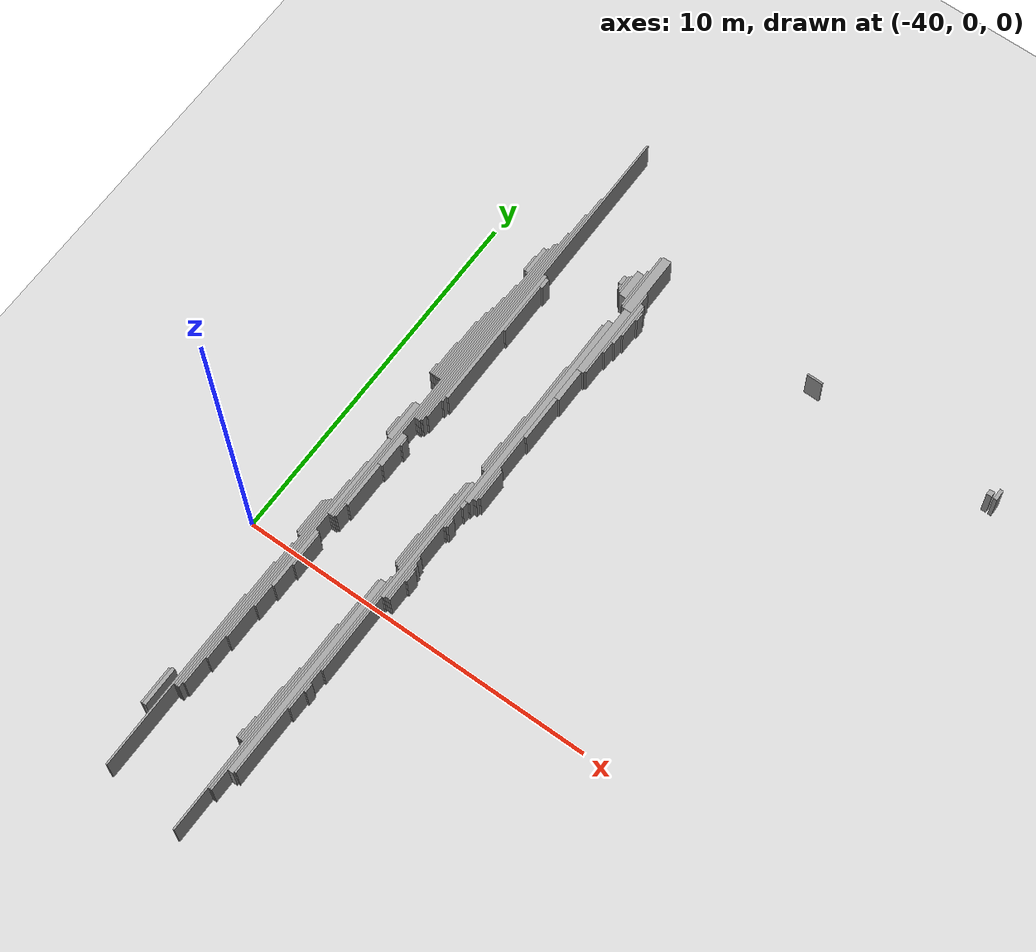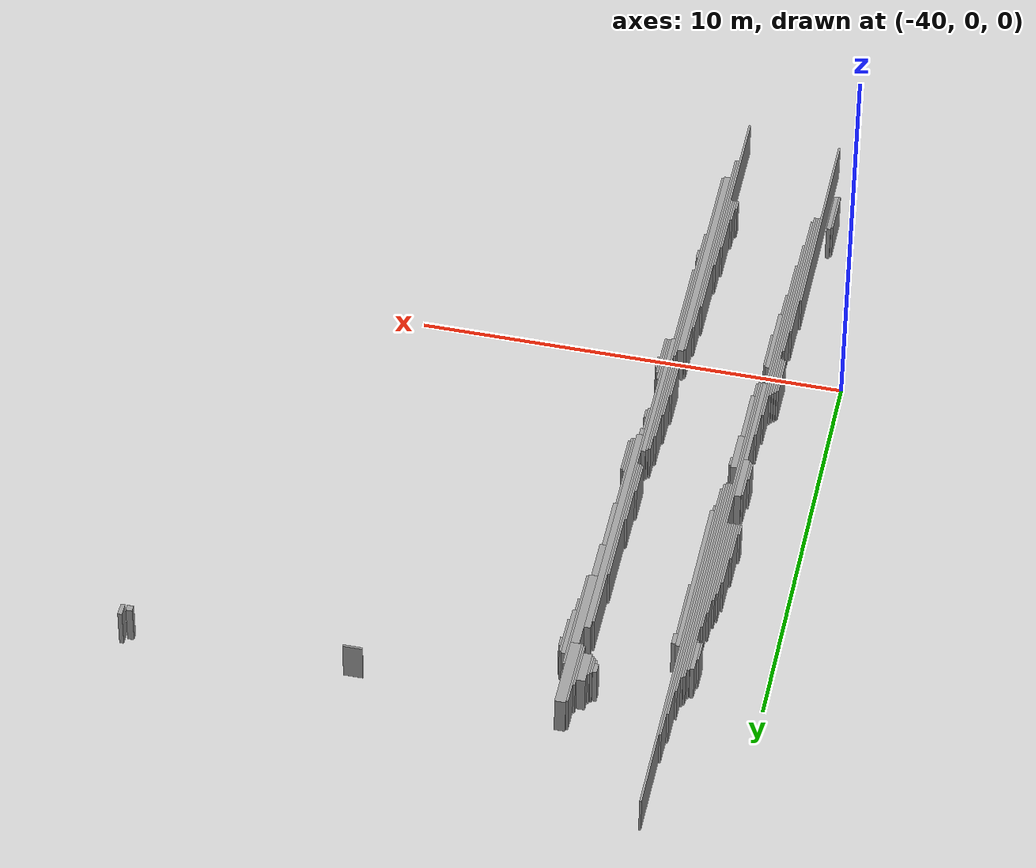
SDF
<sdf version="1.6">
 <world name="default">
  <include><uri>model://ground_plane</uri></include>
  <include><uri>model://sun</uri></include>
  <model name="wall_58">
   <static>1</static>
   <pose>-37.974999999999994 9.2 0.5 0 0 0</pose>
   <link name="link">
    <collision name="collision"><geometry><box><size>0.05 9.4 1.0</size></box></geometry></collision>
    <visual name="visual">
     <geometry><box><size>0.05 9.4 1.0</size></box></geometry>
     <material>
      <script><uri>file://media/materials/scripts/gazebo.material</uri><name>Gazebo/Grey</name></script>
     </material>
    </visual>
   </link>
  </model>
  <model name="wall_149">
   <static>1</static>
   <pose>-38.025 8.150000000000002 0.5 0 0 0</pose>
   <link name="link">
    <collision name="collision">
     <geometry><box><size>0.05 7.6000000000000005 1.0</size></box></geometry>
    </collision>
    <visual name="visual">
     <geometry><box><size>0.05 7.6000000000000005 1.0</size></box></geometry>
     <material>
      <script><uri>file://media/materials/scripts/gazebo.material</uri><name>Gazebo/Grey</name></script>
     </material>
    </visual>
   </link>
  </model>
  <model name="wall_155">
   <static>1</static>
   <pose>-35.675 10.625000000000004 0.5 0 0 0</pose>
   <link name="link">
    <collision name="collision"><geometry><box><size>0.25 1.75 1.0</size></box></geometry></collision>
    <visual name="visual">
     <geometry><box><size>0.25 1.75 1.0</size></box></geometry>
     <material>
      <script><uri>file://media/materials/scripts/gazebo.material</uri><name>Gazebo/Grey</name></script>
     </material>
    </visual>
   </link>
  </model>
  <model name="wall_159">
   <static>1</static>
   <pose>-35.824999999999996 10.600000000000005 0.5 0 0 0</pose>
   <link name="link">
    <collision name="collision">
     <geometry><box><size>0.05 1.7000000000000002 1.0</size></box></geometry>
    </collision>
    <visual name="visual">
     <geometry><box><size>0.05 1.7000000000000002 1.0</size></box></geometry>
     <material>
      <script><uri>file://media/materials/scripts/gazebo.material</uri><name>Gazebo/Grey</name></script>
     </material>
    </visual>
   </link>
  </model>
  <model name="wall_167">
   <static>1</static>
   <pose>-38.074999999999996 7.824999999999999 0.5 0 0 0</pose>
   <link name="link">
    <collision name="collision">
     <geometry><box><size>0.05 7.050000000000001 1.0</size></box></geometry>
    </collision>
    <visual name="visual">
     <geometry><box><size>0.05 7.050000000000001 1.0</size></box></geometry>
     <material>
      <script><uri>file://media/materials/scripts/gazebo.material</uri><name>Gazebo/Grey</name></script>
     </material>
    </visual>
   </link>
  </model>
  <model name="wall_187">
   <static>1</static>
   <pose>-25.499999999999996 10.95 0.5 0 0 0</pose>
   <link name="link">
    <collision name="collision">
     <geometry><box><size>0.1 0.30000000000000004 1.0</size></box></geometry>
    </collision>
    <visual name="visual">
     <geometry><box><size>0.1 0.30000000000000004 1.0</size></box></geometry>
     <material>
      <script><uri>file://media/materials/scripts/gazebo.material</uri><name>Gazebo/Grey</name></script>
     </material>
    </visual>
   </link>
  </model>
  <model name="wall_204">
   <static>1</static>
   <pose>-35.875 10.375000000000004 0.5 0 0 0</pose>
   <link name="link">
    <collision name="collision">
     <geometry><box><size>0.05 1.1500000000000001 1.0</size></box></geometry>
    </collision>
    <visual name="visual">
     <geometry><box><size>0.05 1.1500000000000001 1.0</size></box></geometry>
     <material>
      <script><uri>file://media/materials/scripts/gazebo.material</uri><name>Gazebo/Grey</name></script>
     </material>
    </visual>
   </link>
  </model>
  <model name="wall_205">
   <static>1</static>
   <pose>-30.824999999999996 10.925 0.5 0 0 0</pose>
   <link name="link">
    <collision name="collision"><geometry><box><size>0.45 0.05 1.0</size></box></geometry></collision>
    <visual name="visual">
     <geometry><box><size>0.45 0.05 1.0</size></box></geometry>
     <material>
      <script><uri>file://media/materials/scripts/gazebo.material</uri><name>Gazebo/Grey</name></script>
     </material>
    </visual>
   </link>
  </model>
  <model name="wall_206">
   <static>1</static>
   <pose>-25.674999999999997 10.875000000000004 0.5 0 0 0</pose>
   <link name="link">
    <collision name="collision">
     <geometry><box><size>0.15000000000000002 0.15000000000000002 1.0</size></box></geometry>
    </collision>
    <visual name="visual">
     <geometry><box><size>0.15000000000000002 0.15000000000000002 1.0</size></box></geometry>
     <material>
      <script><uri>file://media/materials/scripts/gazebo.material</uri><name>Gazebo/Grey</name></script>
     </material>
    </visual>
   </link>
  </model>
  <model name="wall_215">
   <static>1</static>
   <pose>-36.0 10.400000000000002 0.5 0 0 0</pose>
   <link name="link">
    <collision name="collision"><geometry><box><size>0.2 0.8 1.0</size></box></geometry></collision>
    <visual name="visual">
     <geometry><box><size>0.2 0.8 1.0</size></box></geometry>
     <material>
      <script><uri>file://media/materials/scripts/gazebo.material</uri><name>Gazebo/Grey</name></script>
     </material>
    </visual>
   </link>
  </model>
  <model name="wall_228">
   <static>1</static>
   <pose>-38.125 7.475000000000005 0.5 0 0 0</pose>
   <link name="link">
    <collision name="collision">
     <geometry><box><size>0.05 6.3500000000000005 1.0</size></box></geometry>
    </collision>
    <visual name="visual">
     <geometry><box><size>0.05 6.3500000000000005 1.0</size></box></geometry>
     <material>
      <script><uri>file://media/materials/scripts/gazebo.material</uri><name>Gazebo/Grey</name></script>
     </material>
    </visual>
   </link>
  </model>
  <model name="wall_229">
   <static>1</static>
   <pose>-36.125 10.325 0.5 0 0 0</pose>
   <link name="link">
    <collision name="collision"><geometry><box><size>0.05 0.55 1.0</size></box></geometry></collision>
    <visual name="visual">
     <geometry><box><size>0.05 0.55 1.0</size></box></geometry>
     <material>
      <script><uri>file://media/materials/scripts/gazebo.material</uri><name>Gazebo/Grey</name></script>
     </material>
    </visual>
   </link>
  </model>
  <model name="wall_230">
   <static>1</static>
   <pose>-36.175 10.325 0.5 0 0 0</pose>
   <link name="link">
    <collision name="collision"><geometry><box><size>0.05 0.45 1.0</size></box></geometry></collision>
    <visual name="visual">
     <geometry><box><size>0.05 0.45 1.0</size></box></geometry>
     <material>
      <script><uri>file://media/materials/scripts/gazebo.material</uri><name>Gazebo/Grey</name></script>
     </material>
    </visual>
   </link>
  </model>
  <model name="wall_232">
   <static>1</static>
   <pose>-36.25 10.375000000000004 0.5 0 0 0</pose>
   <link name="link">
    <collision name="collision"><geometry><box><size>0.1 0.25 1.0</size></box></geometry></collision>
    <visual name="visual">
     <geometry><box><size>0.1 0.25 1.0</size></box></geometry>
     <material>
      <script><uri>file://media/materials/scripts/gazebo.material</uri><name>Gazebo/Grey</name></script>
     </material>
    </visual>
   </link>
  </model>
  <model name="wall_234">
   <static>1</static>
   <pose>-35.525 9.075 0.5 0 0 0</pose>
   <link name="link">
    <collision name="collision">
     <geometry><box><size>0.05 2.6500000000000004 1.0</size></box></geometry>
    </collision>
    <visual name="visual">
     <geometry><box><size>0.05 2.6500000000000004 1.0</size></box></geometry>
     <material>
      <script><uri>file://media/materials/scripts/gazebo.material</uri><name>Gazebo/Grey</name></script>
     </material>
    </visual>
   </link>
  </model>
  <model name="wall_236">
   <static>1</static>
   <pose>-38.175 7.275000000000002 0.5 0 0 0</pose>
   <link name="link">
    <collision name="collision"><geometry><box><size>0.05 5.95 1.0</size></box></geometry></collision>
    <visual name="visual">
     <geometry><box><size>0.05 5.95 1.0</size></box></geometry>
     <material>
      <script><uri>file://media/materials/scripts/gazebo.material</uri><name>Gazebo/Grey</name></script>
     </material>
    </visual>
   </link>
  </model>
  <model name="wall_237">
   <static>1</static>
   <pose>-36.224999999999994 10.2 0.5 0 0 0</pose>
   <link name="link">
    <collision name="collision"><geometry><box><size>0.05 0.1 1.0</size></box></geometry></collision>
    <visual name="visual">
     <geometry><box><size>0.05 0.1 1.0</size></box></geometry>
     <material>
      <script><uri>file://media/materials/scripts/gazebo.material</uri><name>Gazebo/Grey</name></script>
     </material>
    </visual>
   </link>
  </model>
  <model name="wall_238">
   <static>1</static>
   <pose>-38.224999999999994 5.6250000000000036 0.5 0 0 0</pose>
   <link name="link">
    <collision name="collision"><geometry><box><size>0.05 9.15 1.0</size></box></geometry></collision>
    <visual name="visual">
     <geometry><box><size>0.05 9.15 1.0</size></box></geometry>
     <material>
      <script><uri>file://media/materials/scripts/gazebo.material</uri><name>Gazebo/Grey</name></script>
     </material>
    </visual>
   </link>
  </model>
  <model name="wall_239">
   <static>1</static>
   <pose>-35.449999999999996 9.45 0.5 0 0 0</pose>
   <link name="link">
    <collision name="collision"><geometry><box><size>0.1 1.3 1.0</size></box></geometry></collision>
    <visual name="visual">
     <geometry><box><size>0.1 1.3 1.0</size></box></geometry>
     <material>
      <script><uri>file://media/materials/scripts/gazebo.material</uri><name>Gazebo/Grey</name></script>
     </material>
    </visual>
   </link>
  </model>
  <model name="wall_240">
   <static>1</static>
   <pose>-35.375 9.575 0.5 0 0 0</pose>
   <link name="link">
    <collision name="collision">
     <geometry><box><size>0.05 0.9500000000000001 1.0</size></box></geometry>
    </collision>
    <visual name="visual">
     <geometry><box><size>0.05 0.9500000000000001 1.0</size></box></geometry>
     <material>
      <script><uri>file://media/materials/scripts/gazebo.material</uri><name>Gazebo/Grey</name></script>
     </material>
    </visual>
   </link>
  </model>
  <model name="wall_241">
   <static>1</static>
   <pose>-38.275 5.525000000000002 0.5 0 0 0</pose>
   <link name="link">
    <collision name="collision">
     <geometry><box><size>0.05 8.950000000000001 1.0</size></box></geometry>
    </collision>
    <visual name="visual">
     <geometry><box><size>0.05 8.950000000000001 1.0</size></box></geometry>
     <material>
      <script><uri>file://media/materials/scripts/gazebo.material</uri><name>Gazebo/Grey</name></script>
     </material>
    </visual>
   </link>
  </model>
  <model name="wall_242">
   <static>1</static>
   <pose>-38.349999999999994 9.55 0.5 0 0 0</pose>
   <link name="link">
    <collision name="collision"><geometry><box><size>0.1 0.8 1.0</size></box></geometry></collision>
    <visual name="visual">
     <geometry><box><size>0.1 0.8 1.0</size></box></geometry>
     <material>
      <script><uri>file://media/materials/scripts/gazebo.material</uri><name>Gazebo/Grey</name></script>
     </material>
    </visual>
   </link>
  </model>
  <model name="wall_243">
   <static>1</static>
   <pose>-35.324999999999996 9.775000000000002 0.5 0 0 0</pose>
   <link name="link">
    <collision name="collision"><geometry><box><size>0.05 0.25 1.0</size></box></geometry></collision>
    <visual name="visual">
     <geometry><box><size>0.05 0.25 1.0</size></box></geometry>
     <material>
      <script><uri>file://media/materials/scripts/gazebo.material</uri><name>Gazebo/Grey</name></script>
     </material>
    </visual>
   </link>
  </model>
  <model name="wall_244">
   <static>1</static>
   <pose>-35.65 8.725000000000005 0.5 0 0 0</pose>
   <link name="link">
    <collision name="collision">
     <geometry><box><size>0.2 2.0500000000000003 1.0</size></box></geometry>
    </collision>
    <visual name="visual">
     <geometry><box><size>0.2 2.0500000000000003 1.0</size></box></geometry>
     <material>
      <script><uri>file://media/materials/scripts/gazebo.material</uri><name>Gazebo/Grey</name></script>
     </material>
    </visual>
   </link>
  </model>
  <model name="wall_245">
   <static>1</static>
   <pose>-38.425 9.400000000000002 0.5 0 0 0</pose>
   <link name="link">
    <collision name="collision"><geometry><box><size>0.05 0.5 1.0</size></box></geometry></collision>
    <visual name="visual">
     <geometry><box><size>0.05 0.5 1.0</size></box></geometry>
     <material>
      <script><uri>file://media/materials/scripts/gazebo.material</uri><name>Gazebo/Grey</name></script>
     </material>
    </visual>
   </link>
  </model>
  <model name="wall_247">
   <static>1</static>
   <pose>-37.9 7.275000000000002 0.5 0 0 0</pose>
   <link name="link">
    <collision name="collision"><geometry><box><size>0.1 4.15 1.0</size></box></geometry></collision>
    <visual name="visual">
     <geometry><box><size>0.1 4.15 1.0</size></box></geometry>
     <material>
      <script><uri>file://media/materials/scripts/gazebo.material</uri><name>Gazebo/Grey</name></script>
     </material>
    </visual>
   </link>
  </model>
  <model name="wall_250">
   <static>1</static>
   <pose>-37.8 9.150000000000002 0.5 0 0 0</pose>
   <link name="link">
    <collision name="collision">
     <geometry><box><size>0.1 0.30000000000000004 1.0</size></box></geometry>
    </collision>
    <visual name="visual">
     <geometry><box><size>0.1 0.30000000000000004 1.0</size></box></geometry>
     <material>
      <script><uri>file://media/materials/scripts/gazebo.material</uri><name>Gazebo/Grey</name></script>
     </material>
    </visual>
   </link>
  </model>
  <model name="wall_251">
   <static>1</static>
   <pose>-35.824999999999996 6.2500000000000036 0.5 0 0 0</pose>
   <link name="link">
    <collision name="collision">
     <geometry><box><size>0.15000000000000002 6.0 1.0</size></box></geometry>
    </collision>
    <visual name="visual">
     <geometry><box><size>0.15000000000000002 6.0 1.0</size></box></geometry>
     <material>
      <script><uri>file://media/materials/scripts/gazebo.material</uri><name>Gazebo/Grey</name></script>
     </material>
    </visual>
   </link>
  </model>
  <model name="wall_252">
   <static>1</static>
   <pose>-38.324999999999996 9.125000000000004 0.5 0 0 0</pose>
   <link name="link">
    <collision name="collision"><geometry><box><size>0.05 0.05 1.0</size></box></geometry></collision>
    <visual name="visual">
     <geometry><box><size>0.05 0.05 1.0</size></box></geometry>
     <material>
      <script><uri>file://media/materials/scripts/gazebo.material</uri><name>Gazebo/Grey</name></script>
     </material>
    </visual>
   </link>
  </model>
  <model name="wall_253">
   <static>1</static>
   <pose>-35.925 4.600000000000001 0.5 0 0 0</pose>
   <link name="link">
    <collision name="collision"><geometry><box><size>0.05 8.9 1.0</size></box></geometry></collision>
    <visual name="visual">
     <geometry><box><size>0.05 8.9 1.0</size></box></geometry>
     <material>
      <script><uri>file://media/materials/scripts/gazebo.material</uri><name>Gazebo/Grey</name></script>
     </material>
    </visual>
   </link>
  </model>
  <model name="wall_255">
   <static>1</static>
   <pose>-37.824999999999996 8.250000000000004 0.5 0 0 0</pose>
   <link name="link">
    <collision name="collision"><geometry><box><size>0.05 1.5 1.0</size></box></geometry></collision>
    <visual name="visual">
     <geometry><box><size>0.05 1.5 1.0</size></box></geometry>
     <material>
      <script><uri>file://media/materials/scripts/gazebo.material</uri><name>Gazebo/Grey</name></script>
     </material>
    </visual>
   </link>
  </model>
  <model name="wall_256">
   <static>1</static>
   <pose>-35.474999999999994 8.625000000000004 0.5 0 0 0</pose>
   <link name="link">
    <collision name="collision">
     <geometry><box><size>0.05 0.35000000000000003 1.0</size></box></geometry>
    </collision>
    <visual name="visual">
     <geometry><box><size>0.05 0.35000000000000003 1.0</size></box></geometry>
     <material>
      <script><uri>file://media/materials/scripts/gazebo.material</uri><name>Gazebo/Grey</name></script>
     </material>
    </visual>
   </link>
  </model>
  <model name="wall_257">
   <static>1</static>
   <pose>-38.324999999999996 7.100000000000005 0.5 0 0 0</pose>
   <link name="link">
    <collision name="collision"><geometry><box><size>0.05 3.2 1.0</size></box></geometry></collision>
    <visual name="visual">
     <geometry><box><size>0.05 3.2 1.0</size></box></geometry>
     <material>
      <script><uri>file://media/materials/scripts/gazebo.material</uri><name>Gazebo/Grey</name></script>
     </material>
    </visual>
   </link>
  </model>
  <model name="wall_263">
   <static>1</static>
   <pose>-38.375 6.8750000000000036 0.5 0 0 0</pose>
   <link name="link">
    <collision name="collision"><geometry><box><size>0.05 2.75 1.0</size></box></geometry></collision>
    <visual name="visual">
     <geometry><box><size>0.05 2.75 1.0</size></box></geometry>
     <material>
      <script><uri>file://media/materials/scripts/gazebo.material</uri><name>Gazebo/Grey</name></script>
     </material>
    </visual>
   </link>
  </model>
  <model name="wall_266">
   <static>1</static>
   <pose>-38.425 6.675000000000001 0.5 0 0 0</pose>
   <link name="link">
    <collision name="collision"><geometry><box><size>0.05 2.35 1.0</size></box></geometry></collision>
    <visual name="visual">
     <geometry><box><size>0.05 2.35 1.0</size></box></geometry>
     <material>
      <script><uri>file://media/materials/scripts/gazebo.material</uri><name>Gazebo/Grey</name></script>
     </material>
    </visual>
   </link>
  </model>
  <model name="wall_267">
   <static>1</static>
   <pose>-35.675 7.225000000000005 0.5 0 0 0</pose>
   <link name="link">
    <collision name="collision">
     <geometry><box><size>0.15000000000000002 0.9500000000000001 1.0</size></box></geometry>
    </collision>
    <visual name="visual">
     <geometry><box><size>0.15000000000000002 0.9500000000000001 1.0</size></box></geometry>
     <material>
      <script><uri>file://media/materials/scripts/gazebo.material</uri><name>Gazebo/Grey</name></script>
     </material>
    </visual>
   </link>
  </model>
  <model name="wall_268">
   <static>1</static>
   <pose>-38.474999999999994 6.574999999999999 0.5 0 0 0</pose>
   <link name="link">
    <collision name="collision"><geometry><box><size>0.05 2.15 1.0</size></box></geometry></collision>
    <visual name="visual">
     <geometry><box><size>0.05 2.15 1.0</size></box></geometry>
     <material>
      <script><uri>file://media/materials/scripts/gazebo.material</uri><name>Gazebo/Grey</name></script>
     </material>
    </visual>
   </link>
  </model>
  <model name="wall_269">
   <static>1</static>
   <pose>-35.974999999999994 5.8750000000000036 0.5 0 0 0</pose>
   <link name="link">
    <collision name="collision"><geometry><box><size>0.05 3.45 1.0</size></box></geometry></collision>
    <visual name="visual">
     <geometry><box><size>0.05 3.45 1.0</size></box></geometry>
     <material>
      <script><uri>file://media/materials/scripts/gazebo.material</uri><name>Gazebo/Grey</name></script>
     </material>
    </visual>
   </link>
  </model>
  <model name="wall_271">
   <static>1</static>
   <pose>-38.525 6.400000000000002 0.5 0 0 0</pose>
   <link name="link">
    <collision name="collision"><geometry><box><size>0.05 1.8 1.0</size></box></geometry></collision>
    <visual name="visual">
     <geometry><box><size>0.05 1.8 1.0</size></box></geometry>
     <material>
      <script><uri>file://media/materials/scripts/gazebo.material</uri><name>Gazebo/Grey</name></script>
     </material>
    </visual>
   </link>
  </model>
  <model name="wall_274">
   <static>1</static>
   <pose>-35.699999999999996 6.100000000000005 0.5 0 0 0</pose>
   <link name="link">
    <collision name="collision"><geometry><box><size>0.1 1.3 1.0</size></box></geometry></collision>
    <visual name="visual">
     <geometry><box><size>0.1 1.3 1.0</size></box></geometry>
     <material>
      <script><uri>file://media/materials/scripts/gazebo.material</uri><name>Gazebo/Grey</name></script>
     </material>
    </visual>
   </link>
  </model>
  <model name="wall_275">
   <static>1</static>
   <pose>-38.574999999999996 6.025000000000002 0.5 0 0 0</pose>
   <link name="link">
    <collision name="collision"><geometry><box><size>0.05 1.05 1.0</size></box></geometry></collision>
    <visual name="visual">
     <geometry><box><size>0.05 1.05 1.0</size></box></geometry>
     <material>
      <script><uri>file://media/materials/scripts/gazebo.material</uri><name>Gazebo/Grey</name></script>
     </material>
    </visual>
   </link>
  </model>
  <model name="wall_276">
   <static>1</static>
   <pose>-36.025 5.025000000000002 0.5 0 0 0</pose>
   <link name="link">
    <collision name="collision"><geometry><box><size>0.05 1.75 1.0</size></box></geometry></collision>
    <visual name="visual">
     <geometry><box><size>0.05 1.75 1.0</size></box></geometry>
     <material>
      <script><uri>file://media/materials/scripts/gazebo.material</uri><name>Gazebo/Grey</name></script>
     </material>
    </visual>
   </link>
  </model>
  <model name="wall_278">
   <static>1</static>
   <pose>-38.625 5.650000000000002 0.5 0 0 0</pose>
   <link name="link">
    <collision name="collision">
     <geometry><box><size>0.05 0.30000000000000004 1.0</size></box></geometry>
    </collision>
    <visual name="visual">
     <geometry><box><size>0.05 0.30000000000000004 1.0</size></box></geometry>
     <material>
      <script><uri>file://media/materials/scripts/gazebo.material</uri><name>Gazebo/Grey</name></script>
     </material>
    </visual>
   </link>
  </model>
  <model name="wall_281">
   <static>1</static>
   <pose>-35.724999999999994 4.425000000000001 0.5 0 0 0</pose>
   <link name="link">
    <collision name="collision">
     <geometry><box><size>0.05 2.0500000000000003 1.0</size></box></geometry>
    </collision>
    <visual name="visual">
     <geometry><box><size>0.05 2.0500000000000003 1.0</size></box></geometry>
     <material>
      <script><uri>file://media/materials/scripts/gazebo.material</uri><name>Gazebo/Grey</name></script>
     </material>
    </visual>
   </link>
  </model>
  <model name="wall_282">
   <static>1</static>
   <pose>-37.925 5.1250000000000036 0.5 0 0 0</pose>
   <link name="link">
    <collision name="collision">
     <geometry><box><size>0.05 0.15000000000000002 1.0</size></box></geometry>
    </collision>
    <visual name="visual">
     <geometry><box><size>0.05 0.15000000000000002 1.0</size></box></geometry>
     <material>
      <script><uri>file://media/materials/scripts/gazebo.material</uri><name>Gazebo/Grey</name></script>
     </material>
    </visual>
   </link>
  </model>
  <model name="wall_284">
   <static>1</static>
   <pose>-36.074999999999996 4.600000000000001 0.5 0 0 0</pose>
   <link name="link">
    <collision name="collision"><geometry><box><size>0.05 0.8 1.0</size></box></geometry></collision>
    <visual name="visual">
     <geometry><box><size>0.05 0.8 1.0</size></box></geometry>
     <material>
      <script><uri>file://media/materials/scripts/gazebo.material</uri><name>Gazebo/Grey</name></script>
     </material>
    </visual>
   </link>
  </model>
  <model name="wall_285">
   <static>1</static>
   <pose>-38.375 4.075000000000003 0.5 0 0 0</pose>
   <link name="link">
    <collision name="collision">
     <geometry><box><size>0.15000000000000002 1.1500000000000001 1.0</size></box></geometry>
    </collision>
    <visual name="visual">
     <geometry><box><size>0.15000000000000002 1.1500000000000001 1.0</size></box></geometry>
     <material>
      <script><uri>file://media/materials/scripts/gazebo.material</uri><name>Gazebo/Grey</name></script>
     </material>
    </visual>
   </link>
  </model>
  <model name="wall_286">
   <static>1</static>
   <pose>-38.474999999999994 4.075000000000003 0.5 0 0 0</pose>
   <link name="link">
    <collision name="collision"><geometry><box><size>0.05 1.05 1.0</size></box></geometry></collision>
    <visual name="visual">
     <geometry><box><size>0.05 1.05 1.0</size></box></geometry>
     <material>
      <script><uri>file://media/materials/scripts/gazebo.material</uri><name>Gazebo/Grey</name></script>
     </material>
    </visual>
   </link>
  </model>
  <model name="wall_287">
   <static>1</static>
   <pose>-35.675 3.9250000000000007 0.5 0 0 0</pose>
   <link name="link">
    <collision name="collision"><geometry><box><size>0.05 1.05 1.0</size></box></geometry></collision>
    <visual name="visual">
     <geometry><box><size>0.05 1.05 1.0</size></box></geometry>
     <material>
      <script><uri>file://media/materials/scripts/gazebo.material</uri><name>Gazebo/Grey</name></script>
     </material>
    </visual>
   </link>
  </model>
  <model name="wall_289">
   <static>1</static>
   <pose>-35.625 3.950000000000003 0.5 0 0 0</pose>
   <link name="link">
    <collision name="collision"><geometry><box><size>0.05 0.9 1.0</size></box></geometry></collision>
    <visual name="visual">
     <geometry><box><size>0.05 0.9 1.0</size></box></geometry>
     <material>
      <script><uri>file://media/materials/scripts/gazebo.material</uri><name>Gazebo/Grey</name></script>
     </material>
    </visual>
   </link>
  </model>
  <model name="wall_291">
   <static>1</static>
   <pose>-38.525 3.8500000000000014 0.5 0 0 0</pose>
   <link name="link">
    <collision name="collision"><geometry><box><size>0.05 0.5 1.0</size></box></geometry></collision>
    <visual name="visual">
     <geometry><box><size>0.05 0.5 1.0</size></box></geometry>
     <material>
      <script><uri>file://media/materials/scripts/gazebo.material</uri><name>Gazebo/Grey</name></script>
     </material>
    </visual>
   </link>
  </model>
  <model name="wall_295">
   <static>1</static>
   <pose>-38.125 3.3000000000000007 0.5 0 0 0</pose>
   <link name="link">
    <collision name="collision">
     <geometry><box><size>0.15000000000000002 1.0 1.0</size></box></geometry>
    </collision>
    <visual name="visual">
     <geometry><box><size>0.15000000000000002 1.0 1.0</size></box></geometry>
     <material>
      <script><uri>file://media/materials/scripts/gazebo.material</uri><name>Gazebo/Grey</name></script>
     </material>
    </visual>
   </link>
  </model>
  <model name="wall_298">
   <static>1</static>
   <pose>-38.025 3.6250000000000036 0.5 0 0 0</pose>
   <link name="link">
    <collision name="collision"><geometry><box><size>0.05 0.25 1.0</size></box></geometry></collision>
    <visual name="visual">
     <geometry><box><size>0.05 0.25 1.0</size></box></geometry>
     <material>
      <script><uri>file://media/materials/scripts/gazebo.material</uri><name>Gazebo/Grey</name></script>
     </material>
    </visual>
   </link>
  </model>
  <model name="wall_299">
   <static>1</static>
   <pose>-36.0 1.9250000000000007 0.5 0 0 0</pose>
   <link name="link">
    <collision name="collision">
     <geometry><box><size>0.1 3.6500000000000004 1.0</size></box></geometry>
    </collision>
    <visual name="visual">
     <geometry><box><size>0.1 3.6500000000000004 1.0</size></box></geometry>
     <material>
      <script><uri>file://media/materials/scripts/gazebo.material</uri><name>Gazebo/Grey</name></script>
     </material>
    </visual>
   </link>
  </model>
  <model name="wall_302">
   <static>1</static>
   <pose>-36.074999999999996 0.15000000000000213 0.5 0 0 0</pose>
   <link name="link">
    <collision name="collision">
     <geometry><box><size>0.05 7.1000000000000005 1.0</size></box></geometry>
    </collision>
    <visual name="visual">
     <geometry><box><size>0.05 7.1000000000000005 1.0</size></box></geometry>
     <material>
      <script><uri>file://media/materials/scripts/gazebo.material</uri><name>Gazebo/Grey</name></script>
     </material>
    </visual>
   </link>
  </model>
  <model name="wall_304">
   <static>1</static>
   <pose>-36.125 2.275000000000002 0.5 0 0 0</pose>
   <link name="link">
    <collision name="collision"><geometry><box><size>0.05 2.75 1.0</size></box></geometry></collision>
    <visual name="visual">
     <geometry><box><size>0.05 2.75 1.0</size></box></geometry>
     <material>
      <script><uri>file://media/materials/scripts/gazebo.material</uri><name>Gazebo/Grey</name></script>
     </material>
    </visual>
   </link>
  </model>
  <model name="wall_307">
   <static>1</static>
   <pose>-38.349999999999994 2.275000000000002 0.5 0 0 0</pose>
   <link name="link">
    <collision name="collision"><geometry><box><size>0.1 2.45 1.0</size></box></geometry></collision>
    <visual name="visual">
     <geometry><box><size>0.1 2.45 1.0</size></box></geometry>
     <material>
      <script><uri>file://media/materials/scripts/gazebo.material</uri><name>Gazebo/Grey</name></script>
     </material>
    </visual>
   </link>
  </model>
  <model name="wall_310">
   <static>1</static>
   <pose>-36.175 2.1000000000000014 0.5 0 0 0</pose>
   <link name="link">
    <collision name="collision">
     <geometry><box><size>0.05 2.3000000000000003 1.0</size></box></geometry>
    </collision>
    <visual name="visual">
     <geometry><box><size>0.05 2.3000000000000003 1.0</size></box></geometry>
     <material>
      <script><uri>file://media/materials/scripts/gazebo.material</uri><name>Gazebo/Grey</name></script>
     </material>
    </visual>
   </link>
  </model>
  <model name="wall_311">
   <static>1</static>
   <pose>-35.849999999999994 3.150000000000002 0.5 0 0 0</pose>
   <link name="link">
    <collision name="collision"><geometry><box><size>0.1 0.2 1.0</size></box></geometry></collision>
    <visual name="visual">
     <geometry><box><size>0.1 0.2 1.0</size></box></geometry>
     <material>
      <script><uri>file://media/materials/scripts/gazebo.material</uri><name>Gazebo/Grey</name></script>
     </material>
    </visual>
   </link>
  </model>
  <model name="wall_313">
   <static>1</static>
   <pose>-35.875 2.7250000000000014 0.5 0 0 0</pose>
   <link name="link">
    <collision name="collision"><geometry><box><size>0.05 0.65 1.0</size></box></geometry></collision>
    <visual name="visual">
     <geometry><box><size>0.05 0.65 1.0</size></box></geometry>
     <material>
      <script><uri>file://media/materials/scripts/gazebo.material</uri><name>Gazebo/Grey</name></script>
     </material>
    </visual>
   </link>
  </model>
  <model name="wall_316">
   <static>1</static>
   <pose>-38.15 2.150000000000002 0.5 0 0 0</pose>
   <link name="link">
    <collision name="collision"><geometry><box><size>0.1 1.3 1.0</size></box></geometry></collision>
    <visual name="visual">
     <geometry><box><size>0.1 1.3 1.0</size></box></geometry>
     <material>
      <script><uri>file://media/materials/scripts/gazebo.material</uri><name>Gazebo/Grey</name></script>
     </material>
    </visual>
   </link>
  </model>
  <model name="wall_317">
   <static>1</static>
   <pose>-38.425 -0.42499999999999716 0.5 0 0 0</pose>
   <link name="link">
    <collision name="collision"><geometry><box><size>0.05 6.25 1.0</size></box></geometry></collision>
    <visual name="visual">
     <geometry><box><size>0.05 6.25 1.0</size></box></geometry>
     <material>
      <script><uri>file://media/materials/scripts/gazebo.material</uri><name>Gazebo/Grey</name></script>
     </material>
    </visual>
   </link>
  </model>
  <model name="wall_318">
   <static>1</static>
   <pose>-35.824999999999996 2.575000000000003 0.5 0 0 0</pose>
   <link name="link">
    <collision name="collision"><geometry><box><size>0.05 0.25 1.0</size></box></geometry></collision>
    <visual name="visual">
     <geometry><box><size>0.05 0.25 1.0</size></box></geometry>
     <material>
      <script><uri>file://media/materials/scripts/gazebo.material</uri><name>Gazebo/Grey</name></script>
     </material>
    </visual>
   </link>
  </model>
  <model name="wall_319">
   <static>1</static>
   <pose>-36.224999999999994 1.7500000000000036 0.5 0 0 0</pose>
   <link name="link">
    <collision name="collision"><geometry><box><size>0.05 1.6 1.0</size></box></geometry></collision>
    <visual name="visual">
     <geometry><box><size>0.05 1.6 1.0</size></box></geometry>
     <material>
      <script><uri>file://media/materials/scripts/gazebo.material</uri><name>Gazebo/Grey</name></script>
     </material>
    </visual>
   </link>
  </model>
  <model name="wall_321">
   <static>1</static>
   <pose>-38.474999999999994 -1.1499999999999986 0.5 0 0 0</pose>
   <link name="link">
    <collision name="collision"><geometry><box><size>0.05 6.4 1.0</size></box></geometry></collision>
    <visual name="visual">
     <geometry><box><size>0.05 6.4 1.0</size></box></geometry>
     <material>
      <script><uri>file://media/materials/scripts/gazebo.material</uri><name>Gazebo/Grey</name></script>
     </material>
    </visual>
   </link>
  </model>
  <model name="wall_323">
   <static>1</static>
   <pose>-36.275 1.4500000000000028 0.5 0 0 0</pose>
   <link name="link">
    <collision name="collision"><geometry><box><size>0.05 0.9 1.0</size></box></geometry></collision>
    <visual name="visual">
     <geometry><box><size>0.05 0.9 1.0</size></box></geometry>
     <material>
      <script><uri>file://media/materials/scripts/gazebo.material</uri><name>Gazebo/Grey</name></script>
     </material>
    </visual>
   </link>
  </model>
  <model name="wall_324">
   <static>1</static>
   <pose>-38.175 1.3000000000000007 0.5 0 0 0</pose>
   <link name="link">
    <collision name="collision"><geometry><box><size>0.05 0.4 1.0</size></box></geometry></collision>
    <visual name="visual">
     <geometry><box><size>0.05 0.4 1.0</size></box></geometry>
     <material>
      <script><uri>file://media/materials/scripts/gazebo.material</uri><name>Gazebo/Grey</name></script>
     </material>
    </visual>
   </link>
  </model>
  <model name="wall_325">
   <static>1</static>
   <pose>-35.875 0.8000000000000007 0.5 0 0 0</pose>
   <link name="link">
    <collision name="collision"><geometry><box><size>0.05 1.3 1.0</size></box></geometry></collision>
    <visual name="visual">
     <geometry><box><size>0.05 1.3 1.0</size></box></geometry>
     <material>
      <script><uri>file://media/materials/scripts/gazebo.material</uri><name>Gazebo/Grey</name></script>
     </material>
    </visual>
   </link>
  </model>
  <model name="wall_326">
   <static>1</static>
   <pose>-38.525 -1.5499999999999972 0.5 0 0 0</pose>
   <link name="link">
    <collision name="collision"><geometry><box><size>0.05 5.9 1.0</size></box></geometry></collision>
    <visual name="visual">
     <geometry><box><size>0.05 5.9 1.0</size></box></geometry>
     <material>
      <script><uri>file://media/materials/scripts/gazebo.material</uri><name>Gazebo/Grey</name></script>
     </material>
    </visual>
   </link>
  </model>
  <model name="wall_328">
   <static>1</static>
   <pose>-38.574999999999996 0.7750000000000021 0.5 0 0 0</pose>
   <link name="link">
    <collision name="collision">
     <geometry><box><size>0.05 1.1500000000000001 1.0</size></box></geometry>
    </collision>
    <visual name="visual">
     <geometry><box><size>0.05 1.1500000000000001 1.0</size></box></geometry>
     <material>
      <script><uri>file://media/materials/scripts/gazebo.material</uri><name>Gazebo/Grey</name></script>
     </material>
    </visual>
   </link>
  </model>
  <model name="wall_329">
   <static>1</static>
   <pose>-38.625 0.7500000000000036 0.5 0 0 0</pose>
   <link name="link">
    <collision name="collision"><geometry><box><size>0.05 1.1 1.0</size></box></geometry></collision>
    <visual name="visual">
     <geometry><box><size>0.05 1.1 1.0</size></box></geometry>
     <material>
      <script><uri>file://media/materials/scripts/gazebo.material</uri><name>Gazebo/Grey</name></script>
     </material>
    </visual>
   </link>
  </model>
  <model name="wall_330">
   <static>1</static>
   <pose>-38.675 0.7500000000000036 0.5 0 0 0</pose>
   <link name="link">
    <collision name="collision"><geometry><box><size>0.05 1.0 1.0</size></box></geometry></collision>
    <visual name="visual">
     <geometry><box><size>0.05 1.0 1.0</size></box></geometry>
     <material>
      <script><uri>file://media/materials/scripts/gazebo.material</uri><name>Gazebo/Grey</name></script>
     </material>
    </visual>
   </link>
  </model>
  <model name="wall_331">
   <static>1</static>
   <pose>-35.824999999999996 0.7000000000000028 0.5 0 0 0</pose>
   <link name="link">
    <collision name="collision"><geometry><box><size>0.05 1.1 1.0</size></box></geometry></collision>
    <visual name="visual">
     <geometry><box><size>0.05 1.1 1.0</size></box></geometry>
     <material>
      <script><uri>file://media/materials/scripts/gazebo.material</uri><name>Gazebo/Grey</name></script>
     </material>
    </visual>
   </link>
  </model>
  <model name="wall_332">
   <static>1</static>
   <pose>-35.775 0.9250000000000007 0.5 0 0 0</pose>
   <link name="link">
    <collision name="collision">
     <geometry><box><size>0.05 0.35000000000000003 1.0</size></box></geometry>
    </collision>
    <visual name="visual">
     <geometry><box><size>0.05 0.35000000000000003 1.0</size></box></geometry>
     <material>
      <script><uri>file://media/materials/scripts/gazebo.material</uri><name>Gazebo/Grey</name></script>
     </material>
    </visual>
   </link>
  </model>
  <model name="wall_333">
   <static>1</static>
   <pose>-38.375 -0.8999999999999986 0.5 0 0 0</pose>
   <link name="link">
    <collision name="collision">
     <geometry><box><size>0.05 3.9000000000000004 1.0</size></box></geometry>
    </collision>
    <visual name="visual">
     <geometry><box><size>0.05 3.9000000000000004 1.0</size></box></geometry>
     <material>
      <script><uri>file://media/materials/scripts/gazebo.material</uri><name>Gazebo/Grey</name></script>
     </material>
    </visual>
   </link>
  </model>
  <model name="wall_335">
   <static>1</static>
   <pose>-36.125 -2.349999999999998 0.5 0 0 0</pose>
   <link name="link">
    <collision name="collision"><geometry><box><size>0.05 6.0 1.0</size></box></geometry></collision>
    <visual name="visual">
     <geometry><box><size>0.05 6.0 1.0</size></box></geometry>
     <material>
      <script><uri>file://media/materials/scripts/gazebo.material</uri><name>Gazebo/Grey</name></script>
     </material>
    </visual>
   </link>
  </model>
  <model name="wall_336">
   <static>1</static>
   <pose>-38.3 -0.3249999999999993 0.5 0 0 0</pose>
   <link name="link">
    <collision name="collision"><geometry><box><size>0.1 1.75 1.0</size></box></geometry></collision>
    <visual name="visual">
     <geometry><box><size>0.1 1.75 1.0</size></box></geometry>
     <material>
      <script><uri>file://media/materials/scripts/gazebo.material</uri><name>Gazebo/Grey</name></script>
     </material>
    </visual>
   </link>
  </model>
  <model name="wall_338">
   <static>1</static>
   <pose>-38.224999999999994 3.552713678800501e-15 0.5 0 0 0</pose>
   <link name="link">
    <collision name="collision"><geometry><box><size>0.05 1.0 1.0</size></box></geometry></collision>
    <visual name="visual">
     <geometry><box><size>0.05 1.0 1.0</size></box></geometry>
     <material>
      <script><uri>file://media/materials/scripts/gazebo.material</uri><name>Gazebo/Grey</name></script>
     </material>
    </visual>
   </link>
  </model>
  <model name="wall_340">
   <static>1</static>
   <pose>-36.224999999999994 -2.474999999999998 0.5 0 0 0</pose>
   <link name="link">
    <collision name="collision">
     <geometry><box><size>0.15000000000000002 5.8500000000000005 1.0</size></box></geometry>
    </collision>
    <visual name="visual">
     <geometry><box><size>0.15000000000000002 5.8500000000000005 1.0</size></box></geometry>
     <material>
      <script><uri>file://media/materials/scripts/gazebo.material</uri><name>Gazebo/Grey</name></script>
     </material>
    </visual>
   </link>
  </model>
  <model name="wall_342">
   <static>1</static>
   <pose>-36.324999999999996 -2.799999999999997 0.5 0 0 0</pose>
   <link name="link">
    <collision name="collision"><geometry><box><size>0.05 6.4 1.0</size></box></geometry></collision>
    <visual name="visual">
     <geometry><box><size>0.05 6.4 1.0</size></box></geometry>
     <material>
      <script><uri>file://media/materials/scripts/gazebo.material</uri><name>Gazebo/Grey</name></script>
     </material>
    </visual>
   </link>
  </model>
  <model name="wall_345">
   <static>1</static>
   <pose>-36.025 -1.0499999999999972 0.5 0 0 0</pose>
   <link name="link">
    <collision name="collision">
     <geometry><box><size>0.05 2.3000000000000003 1.0</size></box></geometry>
    </collision>
    <visual name="visual">
     <geometry><box><size>0.05 2.3000000000000003 1.0</size></box></geometry>
     <material>
      <script><uri>file://media/materials/scripts/gazebo.material</uri><name>Gazebo/Grey</name></script>
     </material>
    </visual>
   </link>
  </model>
  <model name="wall_346">
   <static>1</static>
   <pose>-38.574999999999996 -2.2749999999999986 0.5 0 0 0</pose>
   <link name="link">
    <collision name="collision"><geometry><box><size>0.05 4.45 1.0</size></box></geometry></collision>
    <visual name="visual">
     <geometry><box><size>0.05 4.45 1.0</size></box></geometry>
     <material>
      <script><uri>file://media/materials/scripts/gazebo.material</uri><name>Gazebo/Grey</name></script>
     </material>
    </visual>
   </link>
  </model>
  <model name="wall_352">
   <static>1</static>
   <pose>-36.375 -3.174999999999997 0.5 0 0 0</pose>
   <link name="link">
    <collision name="collision"><geometry><box><size>0.05 5.65 1.0</size></box></geometry></collision>
    <visual name="visual">
     <geometry><box><size>0.05 5.65 1.0</size></box></geometry>
     <material>
      <script><uri>file://media/materials/scripts/gazebo.material</uri><name>Gazebo/Grey</name></script>
     </material>
    </visual>
   </link>
  </model>
  <model name="wall_357">
   <static>1</static>
   <pose>-38.625 -2.599999999999998 0.5 0 0 0</pose>
   <link name="link">
    <collision name="collision">
     <geometry><box><size>0.05 3.8000000000000003 1.0</size></box></geometry>
    </collision>
    <visual name="visual">
     <geometry><box><size>0.05 3.8000000000000003 1.0</size></box></geometry>
     <material>
      <script><uri>file://media/materials/scripts/gazebo.material</uri><name>Gazebo/Grey</name></script>
     </material>
    </visual>
   </link>
  </model>
  <model name="wall_358">
   <static>1</static>
   <pose>-36.425 -4.149999999999999 0.5 0 0 0</pose>
   <link name="link">
    <collision name="collision"><geometry><box><size>0.05 6.2 1.0</size></box></geometry></collision>
    <visual name="visual">
     <geometry><box><size>0.05 6.2 1.0</size></box></geometry>
     <material>
      <script><uri>file://media/materials/scripts/gazebo.material</uri><name>Gazebo/Grey</name></script>
     </material>
    </visual>
   </link>
  </model>
  <model name="wall_359">
   <static>1</static>
   <pose>-38.324999999999996 -1.5249999999999986 0.5 0 0 0</pose>
   <link name="link">
    <collision name="collision"><geometry><box><size>0.05 0.65 1.0</size></box></geometry></collision>
    <visual name="visual">
     <geometry><box><size>0.05 0.65 1.0</size></box></geometry>
     <material>
      <script><uri>file://media/materials/scripts/gazebo.material</uri><name>Gazebo/Grey</name></script>
     </material>
    </visual>
   </link>
  </model>
  <model name="wall_360">
   <static>1</static>
   <pose>-38.675 -4.349999999999998 0.5 0 0 0</pose>
   <link name="link">
    <collision name="collision"><geometry><box><size>0.05 5.2 1.0</size></box></geometry></collision>
    <visual name="visual">
     <geometry><box><size>0.05 5.2 1.0</size></box></geometry>
     <material>
      <script><uri>file://media/materials/scripts/gazebo.material</uri><name>Gazebo/Grey</name></script>
     </material>
    </visual>
   </link>
  </model>
  <model name="wall_364">
   <static>1</static>
   <pose>-36.474999999999994 -3.549999999999997 0.5 0 0 0</pose>
   <link name="link">
    <collision name="collision"><geometry><box><size>0.05 2.2 1.0</size></box></geometry></collision>
    <visual name="visual">
     <geometry><box><size>0.05 2.2 1.0</size></box></geometry>
     <material>
      <script><uri>file://media/materials/scripts/gazebo.material</uri><name>Gazebo/Grey</name></script>
     </material>
    </visual>
   </link>
  </model>
  <model name="wall_365">
   <static>1</static>
   <pose>-36.025 -2.724999999999998 0.5 0 0 0</pose>
   <link name="link">
    <collision name="collision"><geometry><box><size>0.05 0.25 1.0</size></box></geometry></collision>
    <visual name="visual">
     <geometry><box><size>0.05 0.25 1.0</size></box></geometry>
     <material>
      <script><uri>file://media/materials/scripts/gazebo.material</uri><name>Gazebo/Grey</name></script>
     </material>
    </visual>
   </link>
  </model>
  <model name="wall_366">
   <static>1</static>
   <pose>-36.525 -3.849999999999998 0.5 0 0 0</pose>
   <link name="link">
    <collision name="collision"><geometry><box><size>0.05 1.6 1.0</size></box></geometry></collision>
    <visual name="visual">
     <geometry><box><size>0.05 1.6 1.0</size></box></geometry>
     <material>
      <script><uri>file://media/materials/scripts/gazebo.material</uri><name>Gazebo/Grey</name></script>
     </material>
    </visual>
   </link>
  </model>
  <model name="wall_371">
   <static>1</static>
   <pose>-36.574999999999996 -4.324999999999999 0.5 0 0 0</pose>
   <link name="link">
    <collision name="collision"><geometry><box><size>0.05 0.65 1.0</size></box></geometry></collision>
    <visual name="visual">
     <geometry><box><size>0.05 0.65 1.0</size></box></geometry>
     <material>
      <script><uri>file://media/materials/scripts/gazebo.material</uri><name>Gazebo/Grey</name></script>
     </material>
    </visual>
   </link>
  </model>
  <model name="wall_372">
   <static>1</static>
   <pose>-38.9 -4.7499999999999964 0.5 0 0 0</pose>
   <link name="link">
    <collision name="collision"><geometry><box><size>0.1 1.1 1.0</size></box></geometry></collision>
    <visual name="visual">
     <geometry><box><size>0.1 1.1 1.0</size></box></geometry>
     <material>
      <script><uri>file://media/materials/scripts/gazebo.material</uri><name>Gazebo/Grey</name></script>
     </material>
    </visual>
   </link>
  </model>
  <model name="wall_373">
   <static>1</static>
   <pose>-38.974999999999994 -4.774999999999999 0.5 0 0 0</pose>
   <link name="link">
    <collision name="collision"><geometry><box><size>0.05 1.05 1.0</size></box></geometry></collision>
    <visual name="visual">
     <geometry><box><size>0.05 1.05 1.0</size></box></geometry>
     <material>
      <script><uri>file://media/materials/scripts/gazebo.material</uri><name>Gazebo/Grey</name></script>
     </material>
    </visual>
   </link>
  </model>
  <model name="wall_374">
   <static>1</static>
   <pose>-36.625 -4.524999999999999 0.5 0 0 0</pose>
   <link name="link">
    <collision name="collision"><geometry><box><size>0.05 0.25 1.0</size></box></geometry></collision>
    <visual name="visual">
     <geometry><box><size>0.05 0.25 1.0</size></box></geometry>
     <material>
      <script><uri>file://media/materials/scripts/gazebo.material</uri><name>Gazebo/Grey</name></script>
     </material>
    </visual>
   </link>
  </model>
 </world>
</sdf>
